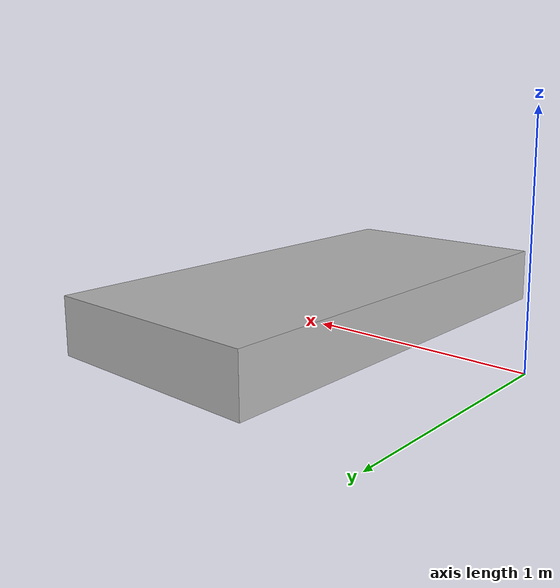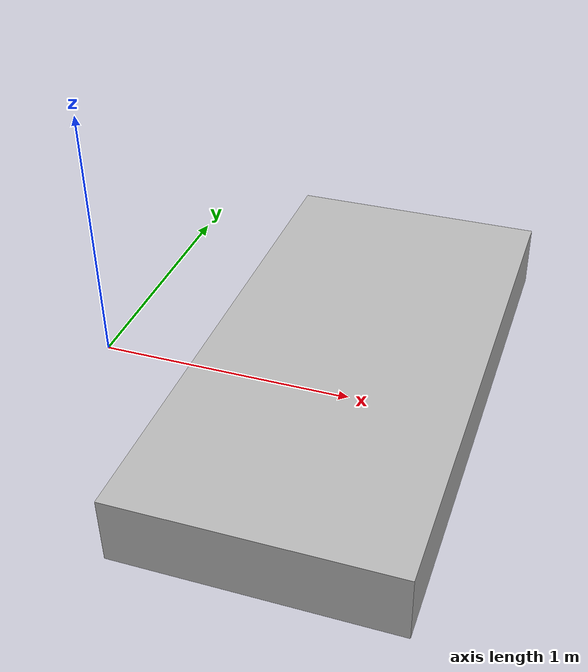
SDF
<?xml version="1.0"?>
<sdf version="1.4">
  <model name="platform_0.25">
    <pose>1.0 0 0.125 0 0 0</pose>
    <static>true</static>

    <link name="platform">
      <visual name="platform_visual">
        <pose>0 0 0 0 0 0</pose>
        <geometry>
          <box>
            <size>1 2 0.25</size>
          </box>
        </geometry>
      </visual>
      <collision name="platform_collision">
        <pose>0 0 0 0 0 0</pose>
        <geometry>
          <box>
            <size>1 2 0.25</size>
          </box>
        </geometry>
      </collision>
    </link>

  </model>
</sdf>
